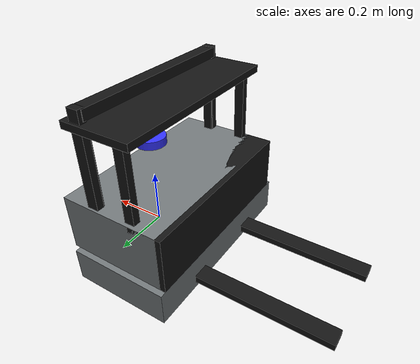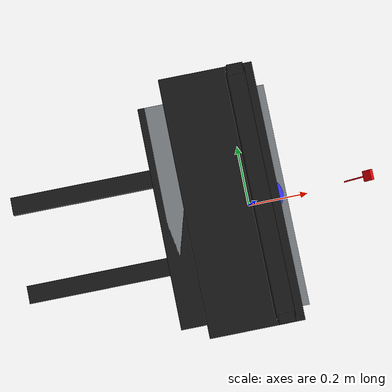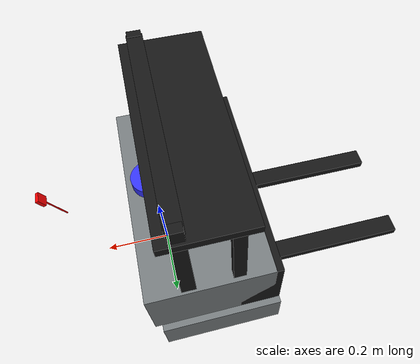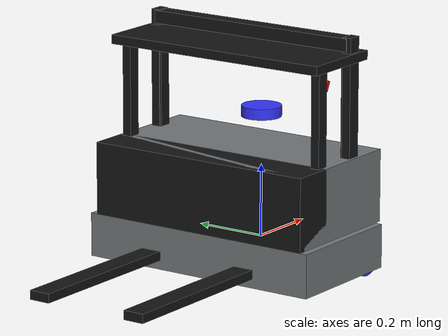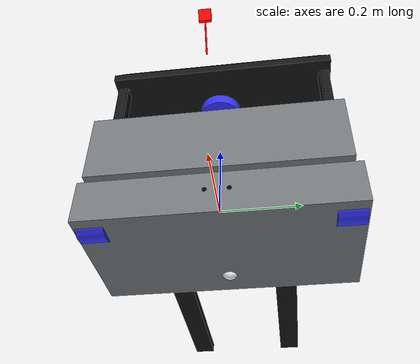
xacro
<?xml version="1.0"?>
<robot xmlns:xacro="http://www.ros.org/wiki/xacro"  name="robot">

    <xacro:arg name="use_ros2_control" default="true"/>
    <xacro:arg name="sim_mode" default="true"/>
    <xacro:arg name="fork_lift_min_height" default="0.0"/>

    <xacro:include filename="robot_core.xacro" />

    <xacro:if value="$(arg use_ros2_control)">
        <xacro:include filename="ros2_control.xacro" />
    </xacro:if>
    <xacro:unless value="$(arg use_ros2_control)">
        <xacro:include filename="gazebo_control.xacro" />
    </xacro:unless>
    <xacro:include filename="forklift_attachments.xacro" />
    <xacro:include filename="lidar.xacro" />
    <xacro:include filename="camera.xacro" />

    <xacro:include filename="face.xacro" />

    <xacro:if value="$(arg sim_mode)">
        <gazebo>
            <plugin filename="gz-sim-odometry-publisher-system"
                name="gz::sim::systems::OdometryPublisher">
                <dimensions>2</dimensions>
                <odom_topic>/ground_truth/odom</odom_topic>
                <odom_frame>world</odom_frame>
                <robot_base_frame>base_link</robot_base_frame>
                <odom_publish_frequency>30</odom_publish_frequency>
            </plugin>
        </gazebo>
    </xacro:if>

</robot>

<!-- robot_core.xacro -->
<robot xmlns:xacro="http://www.ros.org/wiki/xacro" >

    <xacro:include filename="inertial_macros.xacro"/>

    <xacro:property name="chassis_length" value="0.36"/>
    <xacro:property name="chassis_width" value="0.70"/>
    <xacro:property name="chassis_height" value="0.12"/>
    <xacro:property name="chassis_mass" value="6.0"/>
    <xacro:property name="wheel_radius" value="0.055"/>
    <xacro:property name="wheel_thickness" value="0.07"/>
    <xacro:property name="wheel_mass" value="0.4"/>
    <xacro:property name="wheel_offset_x" value="0.30"/>
    <xacro:property name="wheel_offset_y" value="0.31"/>
    <xacro:property name="wheel_offset_z" value="0.045"/>
    <xacro:property name="caster_wheel_radius" value="0.025"/>
    <xacro:property name="caster_wheel_mass" value="0.08"/>
    <xacro:property name="caster_wheel_offset_x" value="0.075"/>
    <xacro:property name="caster_wheel_offset_z" value="${wheel_offset_z - wheel_radius + caster_wheel_radius}"/>

    <material name="white">
        <color rgba="1 1 1 1" />
    </material>

    <material name="orange">
        <color rgba="1 0.3 0.1 1"/>
    </material>

    <material name="blue">
        <color rgba="0.2 0.2 1 1"/>
    </material>

    <material name="black">
        <color rgba="0 0 0 1"/>
    </material>

    <material name="red">
        <color rgba="1 0 0 1"/>
    </material>

    <material name="grey">
        <color rgba="0.45 0.47 0.48 1"/>
    </material>

    <!-- BASE LINK -->

    <link name="base_link">

    </link>

    <!-- BASE_FOOTPRINT LINK -->

    <joint name="base_footprint_joint" type="fixed">
        <parent link="base_link"/>
        <child link="base_footprint"/>
        <origin xyz="0 0 0" rpy="0 0 0"/>
    </joint>

    <link name="base_footprint">
    </link>

    <!-- CHASSIS LINK -->

    <joint name="chassis_joint" type="fixed">
        <parent link="base_link"/>
        <child link="chassis"/>
        <origin xyz="${-wheel_offset_x} 0 ${-wheel_offset_z}"/>
    </joint>

    <link name="chassis">
        <visual>
            <origin xyz="${chassis_length/2} 0 ${chassis_height/2}"/>
            <geometry>
                <box size="${chassis_length} ${chassis_width} ${chassis_height}"/>
            </geometry>
            <material name="grey"/>
        </visual>
        <collision>
            <origin xyz="${chassis_length/2} 0 ${chassis_height/2}"/>
            <geometry>
                <box size="${chassis_length} ${chassis_width} ${chassis_height}"/>
            </geometry>
        </collision>
        <xacro:inertial_box mass="${chassis_mass}" x="${chassis_length}" y="${chassis_width}" z="${chassis_height}">
            <origin xyz="${chassis_length/2} 0 ${chassis_height/2}" rpy="0 0 0"/>
        </xacro:inertial_box>
    </link>

    <gazebo reference="chassis">
        <material>Gazebo/Grey</material>
    </gazebo>

    <!-- LEFT WHEEL LINK -->

    <joint name="left_wheel_joint" type="continuous">
        <parent link="base_link"/>
        <child link="left_wheel"/>
        <origin xyz="0 ${wheel_offset_y} 0" rpy="-${pi/2} 0 0" />
        <axis xyz="0 0 1"/>
    </joint>

    <link name="left_wheel">
        <visual>
            <geometry>
                <cylinder radius="${wheel_radius}" length="${wheel_thickness}"/>
            </geometry>
            <material name="blue"/>
        </visual>
        <collision>
            <geometry>
                <sphere radius="${wheel_radius}"/>
            </geometry>
        </collision>
        <xacro:inertial_cylinder mass="${wheel_mass}" length="${wheel_thickness}" radius="${wheel_radius}">
            <origin xyz="0 0 0" rpy="0 0 0"/>
        </xacro:inertial_cylinder>
    </link>

    <gazebo reference="left_wheel">
        <material>Gazebo/Blue</material>
    </gazebo>

    <!-- RIGHT WHEEL LINK -->

    <joint name="right_wheel_joint" type="continuous">
        <parent link="base_link"/>
        <child link="right_wheel"/>
        <origin xyz="0 ${-wheel_offset_y} 0" rpy="${pi/2} 0 0" />
        <axis xyz="0 0 -1"/>
    </joint>

    <link name="right_wheel">
        <visual>
            <geometry>
                <cylinder radius="${wheel_radius}" length="${wheel_thickness}"/>
            </geometry>
            <material name="blue"/>
        </visual>
        <collision>
            <geometry>
                <sphere radius="${wheel_radius}"/>
            </geometry>
        </collision>
        <xacro:inertial_cylinder mass="${wheel_mass}" length="${wheel_thickness}" radius="${wheel_radius}">
            <origin xyz="0 0 0" rpy="0 0 0"/>
        </xacro:inertial_cylinder>
    </link>

    <gazebo reference="right_wheel">
        <material>Gazebo/Blue</material>
    </gazebo>

    <!-- CASTER WHEEL LINK -->

    <joint name="caster_wheel_joint" type="fixed">
        <parent link="chassis"/>
        <child link="caster_wheel"/>
        <origin xyz="${caster_wheel_offset_x} 0 ${caster_wheel_offset_z}"/>
    </joint>

    <link name="caster_wheel">
        <visual>
            <geometry>
                <sphere radius="${caster_wheel_radius}"/>
            </geometry>
            <material name="white"/>
        </visual>
        <collision>
            <geometry>
                <sphere radius="${caster_wheel_radius}"/>
            </geometry>
        </collision>
        <xacro:inertial_sphere mass="${caster_wheel_mass}" radius="${caster_wheel_radius}">
            <origin xyz="0 0 0" rpy="0 0 0"/>
        </xacro:inertial_sphere>
    </link>

    <gazebo reference="caster_wheel">
        <material>Gazebo/White</material>
        <mu1 value="0.001"/>
        <mu2 value="0.001"/>
    </gazebo>

</robot>

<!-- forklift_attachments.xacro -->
<robot xmlns:xacro="http://www.ros.org/wiki/xacro">

    <xacro:property name="fork_lift_max_height" value="0.35"/>
    <xacro:property name="fork_mast_height" value="0.565"/>
    <xacro:property name="fork_mast_width" value="0.62"/>
    <xacro:property name="fork_length" value="0.65"/>
    <xacro:property name="fork_width" value="0.06"/>
    <xacro:property name="fork_height" value="0.025"/>
    <xacro:property name="fork_spacing" value="0.30"/>

    <material name="forklift_yellow">
        <color rgba="0.45 0.47 0.48 1"/>
    </material>

    <material name="dark_grey">
        <color rgba="0.08 0.08 0.08 1"/>
    </material>

    <material name="steel">
        <color rgba="0.45 0.47 0.48 1"/>
    </material>

    <joint name="forklift_body_cover_joint" type="fixed">
        <parent link="base_link"/>
        <child link="forklift_body_cover"/>
        <origin xyz="-0.10 0 0.075" rpy="0 0 0"/>
    </joint>

    <link name="forklift_body_cover">
        <visual>
            <origin xyz="0 0 0.10" rpy="0 0 0"/>
            <geometry>
                <box size="0.36 0.66 0.20"/>
            </geometry>
            <material name="forklift_yellow"/>
        </visual>
        <collision>
            <origin xyz="0 0 0.10" rpy="0 0 0"/>
            <geometry>
                <box size="0.36 0.66 0.20"/>
            </geometry>
        </collision>
        <xacro:inertial_box mass="8.0" x="0.36" y="0.66" z="0.20">
            <origin xyz="0 0 0.10" rpy="0 0 0"/>
        </xacro:inertial_box>
    </link>

    <joint name="forklift_counterweight_joint" type="fixed">
        <parent link="base_link"/>
        <child link="forklift_counterweight"/>
        <origin xyz="-0.24 0 0.075" rpy="0 0 0"/>
    </joint>

    <link name="forklift_counterweight">
        <visual>
            <origin xyz="0 0 0.10" rpy="0 0 0"/>
            <geometry>
                <box size="0.12 0.66 0.20"/>
            </geometry>
            <material name="dark_grey"/>
        </visual>
        <collision>
            <origin xyz="0 0 0.10" rpy="0 0 0"/>
            <geometry>
                <box size="0.12 0.66 0.20"/>
            </geometry>
        </collision>
        <xacro:inertial_box mass="6.0" x="0.12" y="0.66" z="0.20">
            <origin xyz="0 0 0.10" rpy="0 0 0"/>
        </xacro:inertial_box>
    </link>

    <joint name="forklift_guard_joint" type="fixed">
        <parent link="base_link"/>
        <child link="forklift_overhead_guard"/>
        <origin xyz="-0.10 0 0.20" rpy="0 0 0"/>
    </joint>

    <link name="forklift_overhead_guard">
        <visual>
            <origin xyz="-0.08 0.305 0.17" rpy="0 0 0"/>
            <geometry>
                <box size="0.035 0.025 0.32"/>
            </geometry>
            <material name="dark_grey"/>
        </visual>
        <visual>
            <origin xyz="-0.08 -0.305 0.17" rpy="0 0 0"/>
            <geometry>
                <box size="0.035 0.025 0.32"/>
            </geometry>
            <material name="dark_grey"/>
        </visual>
        <visual>
            <origin xyz="0.06 0.305 0.17" rpy="0 0 0"/>
            <geometry>
                <box size="0.035 0.025 0.32"/>
            </geometry>
            <material name="dark_grey"/>
        </visual>
        <visual>
            <origin xyz="0.06 -0.305 0.17" rpy="0 0 0"/>
            <geometry>
                <box size="0.035 0.025 0.32"/>
            </geometry>
            <material name="dark_grey"/>
        </visual>
        <visual>
            <origin xyz="-0.01 0 0.345" rpy="0 0 0"/>
            <geometry>
                <box size="0.24 0.66 0.025"/>
            </geometry>
            <material name="dark_grey"/>
        </visual>
        <collision name="rear_left_post_collision">
            <origin xyz="-0.08 0.305 0.17" rpy="0 0 0"/>
            <geometry>
                <box size="0.035 0.025 0.32"/>
            </geometry>
        </collision>
        <collision name="rear_right_post_collision">
            <origin xyz="-0.08 -0.305 0.17" rpy="0 0 0"/>
            <geometry>
                <box size="0.035 0.025 0.32"/>
            </geometry>
        </collision>
        <collision name="front_left_post_collision">
            <origin xyz="0.06 0.305 0.17" rpy="0 0 0"/>
            <geometry>
                <box size="0.035 0.025 0.32"/>
            </geometry>
        </collision>
        <collision name="front_right_post_collision">
            <origin xyz="0.06 -0.305 0.17" rpy="0 0 0"/>
            <geometry>
                <box size="0.035 0.025 0.32"/>
            </geometry>
        </collision>
        <collision name="roof_collision">
            <origin xyz="-0.01 0 0.345" rpy="0 0 0"/>
            <geometry>
                <box size="0.24 0.66 0.025"/>
            </geometry>
        </collision>
        <xacro:inertial_box mass="0.8" x="0.24" y="0.64" z="0.38">
            <origin xyz="-0.01 0 0.19" rpy="0 0 0"/>
        </xacro:inertial_box>
    </link>

    <joint name="forklift_mast_joint" type="fixed">
        <parent link="base_link"/>
        <child link="forklift_mast"/>
        <origin xyz="-0.04 0 0.035" rpy="0 0 ${pi}"/>
    </joint>

    <link name="forklift_mast">
        <visual>
            <origin xyz="0 ${fork_mast_width / 2.0} ${fork_mast_height / 2.0}" rpy="0 0 0"/>
            <geometry>
                <box size="0.04 0.025 ${fork_mast_height}"/>
            </geometry>
            <material name="dark_grey"/>
        </visual>
        <visual>
            <origin xyz="0 -${fork_mast_width / 2.0} ${fork_mast_height / 2.0}" rpy="0 0 0"/>
            <geometry>
                <box size="0.04 0.025 ${fork_mast_height}"/>
            </geometry>
            <material name="dark_grey"/>
        </visual>
        <visual>
            <origin xyz="0 0 ${fork_mast_height - 0.02}" rpy="0 0 0"/>
            <geometry>
                <box size="0.045 ${fork_mast_width} 0.035"/>
            </geometry>
            <material name="dark_grey"/>
        </visual>
        <collision name="left_rail_collision">
            <origin xyz="0 ${fork_mast_width / 2.0} ${fork_mast_height / 2.0}" rpy="0 0 0"/>
            <geometry>
                <box size="0.05 0.035 ${fork_mast_height}"/>
            </geometry>
        </collision>
        <collision name="right_rail_collision">
            <origin xyz="0 -${fork_mast_width / 2.0} ${fork_mast_height / 2.0}" rpy="0 0 0"/>
            <geometry>
                <box size="0.05 0.035 ${fork_mast_height}"/>
            </geometry>
        </collision>
        <collision name="top_bar_collision">
            <origin xyz="0 0 ${fork_mast_height - 0.02}" rpy="0 0 0"/>
            <geometry>
                <box size="0.055 ${fork_mast_width} 0.035"/>
            </geometry>
        </collision>
        <xacro:inertial_box mass="0.45" x="0.05" y="${fork_mast_width}" z="${fork_mast_height}">
            <origin xyz="0 0 ${fork_mast_height / 2.0}" rpy="0 0 0"/>
        </xacro:inertial_box>
    </link>

    <joint name="fork_carriage_joint" type="prismatic">
        <parent link="forklift_mast"/>
        <child link="fork_carriage"/>
        <origin xyz="0.035 0 -0.055" rpy="0 0 0"/>
        <axis xyz="0 0 1"/>
        <limit lower="$(arg fork_lift_min_height)" upper="${fork_lift_max_height}" effort="2000.0" velocity="0.35"/>
        <dynamics damping="8.0" friction="1.0"/>
    </joint>

    <link name="fork_carriage">
        <visual>
            <origin xyz="0.015 0 0.05" rpy="0 0 0"/>
            <geometry>
                <box size="0.04 0.42 0.10"/>
            </geometry>
            <material name="steel"/>
        </visual>
        <collision>
            <origin xyz="0.015 0 0.05" rpy="0 0 0"/>
            <geometry>
                <box size="0.04 0.42 0.10"/>
            </geometry>
        </collision>
        <xacro:inertial_box mass="0.8" x="0.04" y="0.42" z="0.10">
            <origin xyz="0.015 0 0.05" rpy="0 0 0"/>
        </xacro:inertial_box>
    </link>

    <joint name="left_fork_joint" type="fixed">
        <parent link="fork_carriage"/>
        <child link="left_fork"/>
        <origin xyz="0.055 ${fork_spacing / 2.0} 0.0" rpy="0 0 0"/>
    </joint>

    <link name="left_fork">
        <visual>
            <origin xyz="${fork_length / 2.0} 0 ${fork_height / 2.0}" rpy="0 0 0"/>
            <geometry>
                <box size="${fork_length} ${fork_width} ${fork_height}"/>
            </geometry>
            <material name="dark_grey"/>
        </visual>
        <collision>
            <origin xyz="${fork_length / 2.0} 0 ${fork_height / 2.0}" rpy="0 0 0"/>
            <geometry>
                <box size="${fork_length} ${fork_width} ${fork_height}"/>
            </geometry>
        </collision>
        <xacro:inertial_box mass="0.18" x="${fork_length}" y="${fork_width}" z="${fork_height}">
            <origin xyz="${fork_length / 2.0} 0 ${fork_height / 2.0}" rpy="0 0 0"/>
        </xacro:inertial_box>
    </link>

    <joint name="right_fork_joint" type="fixed">
        <parent link="fork_carriage"/>
        <child link="right_fork"/>
        <origin xyz="0.055 -${fork_spacing / 2.0} 0.0" rpy="0 0 0"/>
    </joint>

    <link name="right_fork">
        <visual>
            <origin xyz="${fork_length / 2.0} 0 ${fork_height / 2.0}" rpy="0 0 0"/>
            <geometry>
                <box size="${fork_length} ${fork_width} ${fork_height}"/>
            </geometry>
            <material name="dark_grey"/>
        </visual>
        <collision>
            <origin xyz="${fork_length / 2.0} 0 ${fork_height / 2.0}" rpy="0 0 0"/>
            <geometry>
                <box size="${fork_length} ${fork_width} ${fork_height}"/>
            </geometry>
        </collision>
        <xacro:inertial_box mass="0.18" x="${fork_length}" y="${fork_width}" z="${fork_height}">
            <origin xyz="${fork_length / 2.0} 0 ${fork_height / 2.0}" rpy="0 0 0"/>
        </xacro:inertial_box>
    </link>

    <gazebo reference="forklift_body_cover">
        <material>Gazebo/Grey</material>
    </gazebo>

    <gazebo reference="forklift_counterweight">
        <material>Gazebo/Black</material>
    </gazebo>

    <gazebo reference="forklift_mast">
        <material>Gazebo/Black</material>
    </gazebo>

    <gazebo reference="fork_carriage">
        <material>Gazebo/Black</material>
        <mu1>4.0</mu1>
        <mu2>4.0</mu2>
    </gazebo>

    <gazebo reference="left_fork">
        <material>Gazebo/Black</material>
        <mu1>4.0</mu1>
        <mu2>4.0</mu2>
    </gazebo>

    <gazebo reference="right_fork">
        <material>Gazebo/Black</material>
        <mu1>4.0</mu1>
        <mu2>4.0</mu2>
    </gazebo>

    <xacro:if value="$(arg sim_mode)">
        <gazebo>
            <plugin filename="gz-sim-joint-position-controller-system" name="gz::sim::systems::JointPositionController">
                <joint_name>fork_carriage_joint</joint_name>
                <topic>fork_position_cmd</topic>
                <p_gain>6000.0</p_gain>
                <i_gain>0.0</i_gain>
                <d_gain>120.0</d_gain>
                <cmd_min>-2000.0</cmd_min>
                <cmd_max>2000.0</cmd_max>
            </plugin>
        </gazebo>
    </xacro:if>

</robot>

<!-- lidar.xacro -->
<robot xmlns:xacro="http://www.ros.org/wiki/xacro">

    <xacro:arg name="laser_x" default="0.00"/>
    <xacro:arg name="laser_y" default="0.00"/>
    <xacro:arg name="laser_z" default="0.35"/>

    <joint name="laser_joint" type="fixed">
        <parent link="base_link"/>
        <child link="laser_frame"/>
        <origin xyz="$(arg laser_x) $(arg laser_y) $(arg laser_z)" rpy="0 0 0"/>
    </joint>

    <gazebo reference="laser_joint">
        <preserveFixedJoint>true</preserveFixedJoint>
    </gazebo>

    <link name="laser_frame">
        <visual>
            <origin xyz="0 0 0" rpy="0 0 0"/>
            <geometry>
                <cylinder radius="0.055" length="0.03"/>
            </geometry>
            <material name="blue"/>
        </visual>

        <xacro:inertial_cylinder mass="0.1" length="0.04" radius="0.05">
            <origin xyz="0 0 0" rpy="0 0 0"/>
        </xacro:inertial_cylinder>
    </link>

    <gazebo reference="laser_frame">
        <material>Gazebo/Blue</material>

        <sensor name="laser" type="gpu_lidar">
            <pose>0 0 0 0 0 0</pose>
            <visualize>true</visualize>
            <always_on>true</always_on>
            <update_rate>15</update_rate>

            <lidar>
                <scan>
                    <horizontal>
                        <samples>720</samples>
                        <resolution>1</resolution>
                        <min_angle>-3.14159</min_angle>
                        <max_angle>3.14159</max_angle>
                    </horizontal>
                    <vertical>
                        <samples>1</samples>
                        <resolution>1</resolution>
                        <min_angle>0</min_angle>
                        <max_angle>0</max_angle>
                    </vertical>
                </scan>

                <range>
                    <min>0.20</min>
                    <max>10.0</max>
                    <resolution>0.01</resolution>
                </range>
            </lidar>

            <topic>scan</topic>
            <gz_frame_id>laser_frame</gz_frame_id>
        </sensor>
    </gazebo>

</robot>

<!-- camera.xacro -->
<robot xmlns:xacro="http://www.ros.org/wiki/xacro" >

    <joint name="camera_joint" type="fixed">
        <parent link="base_link"/>
        <child link="camera_link"/>
        <origin xyz="0.30 0 0.36" rpy="0 0.45 0"/>
    </joint>

    <link name="camera_link">
        <visual>
            <geometry>
                <box size="0.010 0.03 0.03"/>
            </geometry>
            <material name="red"/>
        </visual>
        <visual>
            <origin xyz="0 0 -0.05"/>
            <geometry>
                <cylinder radius="0.002" length="0.1"/>
            </geometry>
            <material name="red"/>
        </visual>
        <xacro:inertial_box mass="0.03" x="0.010" y="0.03" z="0.03">
            <origin xyz="0 0 0" rpy="0 0 0"/>
        </xacro:inertial_box>
    </link>

    <joint name="camera_optical_joint" type="fixed">
        <parent link="camera_link"/>
        <child link="camera_link_optical"/>
        <origin xyz="0 0 0" rpy="${-pi/2} 0 ${-pi/2}"/>
    </joint>

    <link name="camera_link_optical"></link>

    <gazebo reference="camera_link">
        <material>Gazebo/Red</material>

        <sensor name="rear_qr_camera" type="camera">
            <pose> 0 0 0 0 0 0 </pose>
            <visualize>true</visualize>
            <always_on>true</always_on>
            <update_rate>10</update_rate>
            <camera>
                <camera_info_topic>camera/camera_info</camera_info_topic>
                <horizontal_fov>1.089</horizontal_fov>
                <image>
                    <format>R8G8B8</format>
                    <width>960</width>
                    <height>720</height>
                </image>
                <clip>
                    <near>0.05</near>
                    <far>8.0</far>
                </clip>
            </camera>
            <topic>camera/image_raw</topic>
        </sensor>
    </gazebo>

</robot>

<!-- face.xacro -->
<robot xmlns:xacro="http://www.ros.org/wiki/xacro" >

    <joint name="face_joint" type="fixed">
        <parent link="chassis"/>
        <child link="face_link"/>
        <origin xyz="${chassis_length} 0 ${chassis_height/2}" rpy="0 0 0"/>
    </joint>

    <link name="face_link">
        <visual>
            <origin xyz="0 0.03 0.008" rpy="0 ${pi/2} 0"/>
            <geometry>
                <cylinder radius="0.006" length="0.002"/>
            </geometry>
            <material name="black"/>
        </visual>

        <visual>
            <origin xyz="0 -0.03 0.008" rpy="0 ${pi/2} 0"/>
            <geometry>
                <cylinder radius="0.006" length="0.002"/>
            </geometry>
            <material name="black"/>
        </visual>

        <visual>
            <origin xyz="-0.011 0 -0.00" rpy="0 ${1.5} 0"/>
            <geometry>
                <cylinder radius="0.025" length="0.010"/>
            </geometry>
            <material name="red"/>
        </visual>
    </link>

    <gazebo reference="face_link">
        <material>Gazebo/Black</material>
    </gazebo>

</robot>
